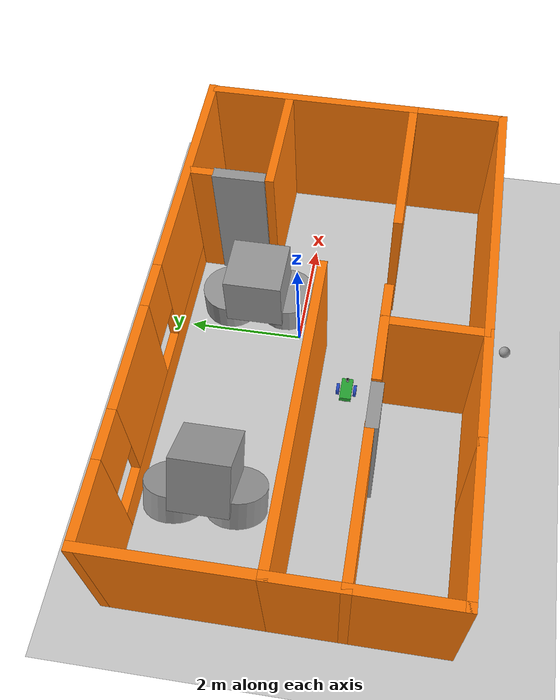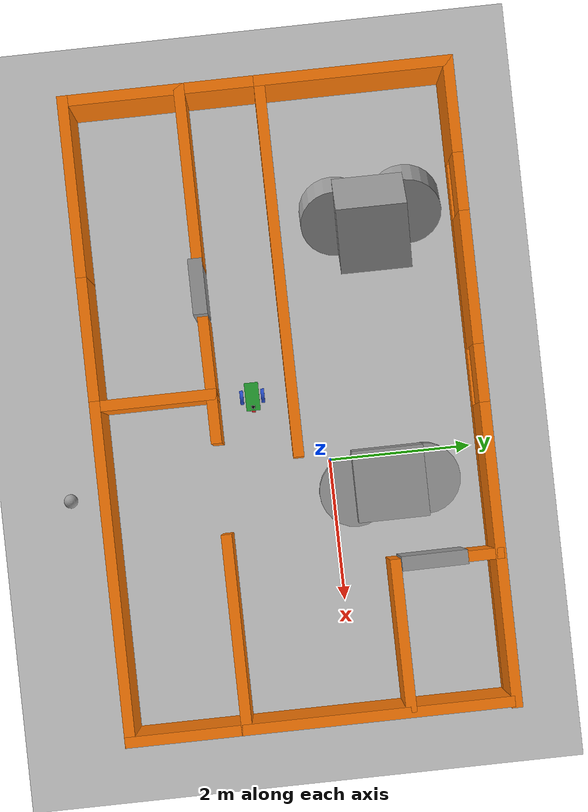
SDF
<sdf version="1.6">
 <world name="default">
  <plugin name="world" filename="libworld.so"/>
  <light name="sun" type="directional">
   <pose>0 0 10 0 -0 0</pose>
   <diffuse>0.8 0.8 0.8 1</diffuse>
   <specular>0.2 0.2 0.2 1</specular>
   <attenuation>
    <range>1000</range>
    <constant>0.9</constant>
    <linear>0.01</linear>
    <quadratic>0.001</quadratic>
   </attenuation>
   <direction>-0.5 0.1 -0.9</direction>
  </light>
  <model name="ground_plane">
   <static>1</static>
   <link name="link">
    <collision name="collision">
     <geometry><plane><normal>0 0 1</normal><size>100 100</size></plane></geometry>
     <surface>
      <contact><collide_bitmask>65535</collide_bitmask></contact>
      <friction><ode><mu>100</mu><mu2>50</mu2></ode></friction>
     </surface>
    </collision>
    <visual name="visual">
     <cast_shadows>0</cast_shadows>
     <geometry><plane><normal>0 0 1</normal><size>100 100</size></plane></geometry>
     <material>
      <script><uri>file://media/materials/scripts/gazebo.material</uri><name>Gazebo/Grey</name></script>
     </material>
    </visual>
   </link>
  </model>
  <gravity>0 0 -9.8</gravity>
  <magnetic_field>6e-06 2.3e-05 -4.2e-05</magnetic_field>
  <atmosphere type="adiabatic"/>
  <physics name="default_physics" default="0" type="ode">
   <max_step_size>0.001</max_step_size>
   <real_time_factor>1</real_time_factor>
   <real_time_update_rate>1000</real_time_update_rate>
  </physics>
  <scene><ambient>0.4 0.4 0.4 1</ambient><background>0.7 0.7 0.7 1</background><shadows>1</shadows></scene>
  <spherical_coordinates>
   <surface_model>EARTH_WGS84</surface_model>
   <latitude_deg>0</latitude_deg>
   <longitude_deg>0</longitude_deg>
   <elevation>0</elevation>
   <heading_deg>0</heading_deg>
  </spherical_coordinates>
  <model name="MyWorld">
   <pose>-0.8409 -0.49336 0 0 -0 0</pose>
   <link name="Door_1">
    <collision name="Door_1_Collision">
     <geometry><box><size>0.767 0.2 2.5</size></box></geometry>
     <pose>0 0 1.25 0 -0 0</pose>
    </collision>
    <visual name="Door_1_Visual">
     <pose>0 0 1.25 0 -0 0</pose>
     <geometry><box><size>0.767 0.2 2.5</size></box></geometry>
     <material>
      <script><uri>file://media/materials/scripts/gazebo.material</uri><name>Gazebo/Grey</name></script>
     </material>
    </visual>
    <pose>-1.69584 -1.0816 0 0 -0 0</pose>
   </link>
   <link name="Door_6">
    <collision name="Door_6_Collision">
     <geometry><box><size>0.911435 0.2 2.5</size></box></geometry>
     <pose>0 0 1.25 0 -0 0</pose>
    </collision>
    <visual name="Door_6_Visual">
     <pose>0 0 1.25 0 -0 0</pose>
     <geometry><box><size>0.911435 0.2 2.5</size></box></geometry>
     <material>
      <script><uri>file://media/materials/scripts/gazebo.material</uri><name>Gazebo/Grey</name></script>
     </material>
    </visual>
    <pose>2.36766 1.74731 0 0 0 -1.56603</pose>
   </link>
   <link name="Wall_0">
    <collision name="Wall_0_Collision">
     <geometry><box><size>2.5 0.15 2.5</size></box></geometry>
     <pose>0 0 1.25 0 -0 0</pose>
    </collision>
    <visual name="Wall_0_Visual">
     <pose>0 0 1.25 0 -0 0</pose>
     <geometry><box><size>2.5 0.15 2.5</size></box></geometry>
     <material>
      <script><uri>file://media/materials/scripts/gazebo.material</uri><name>Gazebo/Grey</name></script>
      <ambient>0.996078 0.47451 0.0196078 1</ambient>
     </material>
     <meta><layer>0</layer></meta>
    </visual>
    <pose>-3.2325 -1.05 0 0 -0 3.14159</pose>
   </link>
   <link name="Wall_1">
    <collision name="Wall_1_Collision">
     <geometry><box><size>1.75 0.15 2.5</size></box></geometry>
     <pose>0 0 1.25 0 -0 0</pose>
    </collision>
    <visual name="Wall_1_Visual">
     <pose>0 0 1.25 0 -0 0</pose>
     <geometry><box><size>1.75 0.15 2.5</size></box></geometry>
     <material>
      <script><uri>file://media/materials/scripts/gazebo.material</uri><name>Gazebo/Grey</name></script>
      <ambient>0.996078 0.47451 0.0196078 1</ambient>
     </material>
     <meta><layer>0</layer></meta>
    </visual>
    <pose>-4.4075 -1.85 0 0 0 -1.5708</pose>
   </link>
   <link name="Wall_11">
    <collision name="Wall_11_Collision">
     <geometry><box><size>1.25 0.15 2.5</size></box></geometry>
     <pose>0 0 1.25 0 -0 0</pose>
    </collision>
    <visual name="Wall_11_Visual">
     <pose>0 0 1.25 0 -0 0</pose>
     <geometry><box><size>1.25 0.15 2.5</size></box></geometry>
     <material>
      <script><uri>file://media/materials/scripts/gazebo.material</uri><name>Gazebo/Grey</name></script>
      <ambient>0.996078 0.47451 0.0196078 1</ambient>
     </material>
     <meta><layer>0</layer></meta>
    </visual>
    <pose>-4.4075 -0.5 0 0 -0 1.5708</pose>
   </link>
   <link name="Wall_12">
    <collision name="Wall_12_Collision">
     <geometry><box><size>5.25 0.15 2.5</size></box></geometry>
     <pose>0 0 1.25 0 -0 0</pose>
    </collision>
    <visual name="Wall_12_Visual">
     <pose>0 0 1.25 0 -0 0</pose>
     <geometry><box><size>5.25 0.15 2.5</size></box></geometry>
     <material>
      <script><uri>file://media/materials/scripts/gazebo.material</uri><name>Gazebo/Grey</name></script>
      <ambient>0.996078 0.47451 0.0196078 1</ambient>
     </material>
     <meta><layer>0</layer></meta>
    </visual>
    <pose>-1.8575 0.05 0 0 -0 0</pose>
   </link>
   <link name="Wall_15">
    <collision name="Wall_15_Collision">
     <geometry><box><size>2.75 0.15 2.5</size></box></geometry>
     <pose>0 0 1.25 0 -0 0</pose>
    </collision>
    <visual name="Wall_15_Visual">
     <pose>0 0 1.25 0 -0 0</pose>
     <geometry><box><size>2.75 0.15 2.5</size></box></geometry>
     <material>
      <script><uri>file://media/materials/scripts/gazebo.material</uri><name>Gazebo/Grey</name></script>
      <ambient>0.996078 0.47451 0.0196078 1</ambient>
     </material>
     <meta><layer>0</layer></meta>
    </visual>
    <pose>-4.4075 1.35 0 0 -0 1.5708</pose>
   </link>
   <link name="Wall_16">
    <pose>0 2.65 0 0 -0 0</pose>
    <visual name="Wall_16_Visual_0">
     <pose>-3.81322 0 1.25 0 -0 0</pose>
     <geometry><box><size>1.33857 0.15 2.5</size></box></geometry>
     <material>
      <script><uri>file://media/materials/scripts/gazebo.material</uri><name>Gazebo/Grey</name></script>
      <ambient>0.996078 0.47451 0.0196078 1</ambient>
     </material>
     <meta><layer>0</layer></meta>
    </visual>
    <collision name="Wall_16_Collision_0">
     <geometry><box><size>1.33857 0.15 2.5</size></box></geometry>
     <pose>-3.81322 0 1.25 0 -0 0</pose>
    </collision>
    <visual name="Wall_16_Visual_1">
     <pose>0.669285 0 0.25 0 -0 0</pose>
     <geometry><box><size>7.62643 0.15 0.5</size></box></geometry>
     <material>
      <script><uri>file://media/materials/scripts/gazebo.material</uri><name>Gazebo/Grey</name></script>
      <ambient>0.996078 0.47451 0.0196078 1</ambient>
     </material>
     <meta><layer>0</layer></meta>
    </visual>
    <collision name="Wall_16_Collision_1">
     <geometry><box><size>7.62643 0.15 0.5</size></box></geometry>
     <pose>0.669285 0 0.25 0 -0 0</pose>
    </collision>
    <visual name="Wall_16_Visual_2">
     <pose>-1.42722 0 1.5 0 -0 0</pose>
     <geometry><box><size>1.83342 0.15 2</size></box></geometry>
     <material>
      <script><uri>file://media/materials/scripts/gazebo.material</uri><name>Gazebo/Grey</name></script>
      <ambient>0.996078 0.47451 0.0196078 1</ambient>
     </material>
     <meta><layer>0</layer></meta>
    </visual>
    <collision name="Wall_16_Collision_2">
     <geometry><box><size>1.83342 0.15 2</size></box></geometry>
     <pose>-1.42722 0 1.5 0 -0 0</pose>
    </collision>
    <visual name="Wall_16_Visual_3">
     <pose>2.38599 0 1.5 0 -0 0</pose>
     <geometry><box><size>4.19301 0.15 2</size></box></geometry>
     <material>
      <script><uri>file://media/materials/scripts/gazebo.material</uri><name>Gazebo/Grey</name></script>
      <ambient>0.996078 0.47451 0.0196078 1</ambient>
     </material>
     <meta><layer>0</layer></meta>
    </visual>
    <collision name="Wall_16_Collision_3">
     <geometry><box><size>4.19301 0.15 2</size></box></geometry>
     <pose>2.38599 0 1.5 0 -0 0</pose>
    </collision>
    <visual name="Wall_16_Visual_4">
     <pose>-2.74393 0 1.9 0 -0 0</pose>
     <geometry><box><size>0.8 0.15 1.2</size></box></geometry>
     <material>
      <script><uri>file://media/materials/scripts/gazebo.material</uri><name>Gazebo/Grey</name></script>
      <ambient>0.996078 0.47451 0.0196078 1</ambient>
     </material>
     <meta><layer>0</layer></meta>
    </visual>
    <collision name="Wall_16_Collision_4">
     <geometry><box><size>0.8 0.15 1.2</size></box></geometry>
     <pose>-2.74393 0 1.9 0 -0 0</pose>
    </collision>
    <visual name="Wall_16_Visual_5">
     <pose>-0.110511 0 1.9 0 -0 0</pose>
     <geometry><box><size>0.8 0.15 1.2</size></box></geometry>
     <material>
      <script><uri>file://media/materials/scripts/gazebo.material</uri><name>Gazebo/Grey</name></script>
      <ambient>0.996078 0.47451 0.0196078 1</ambient>
     </material>
     <meta><layer>0</layer></meta>
    </visual>
    <collision name="Wall_16_Collision_5">
     <geometry><box><size>0.8 0.15 1.2</size></box></geometry>
     <pose>-0.110511 0 1.9 0 -0 0</pose>
    </collision>
   </link>
   <link name="Wall_18">
    <collision name="Wall_18_Collision">
     <geometry><box><size>3.75 0.15 2.5</size></box></geometry>
     <pose>0 0 1.25 0 -0 0</pose>
    </collision>
    <visual name="Wall_18_Visual">
     <pose>0 0 1.25 0 -0 0</pose>
     <geometry><box><size>3.75 0.15 2.5</size></box></geometry>
     <material>
      <script><uri>file://media/materials/scripts/gazebo.material</uri><name>Gazebo/Grey</name></script>
      <ambient>0.996078 0.47451 0.0196078 1</ambient>
     </material>
     <meta><layer>0</layer></meta>
    </visual>
    <pose>4.3925 0.75 0 0 -0 1.5708</pose>
   </link>
   <link name="Wall_2">
    <collision name="Wall_2_Collision">
     <geometry><box><size>2.5 0.15 2.5</size></box></geometry>
     <pose>0 0 1.25 0 -0 0</pose>
    </collision>
    <visual name="Wall_2_Visual">
     <pose>0 0 1.25 0 -0 0</pose>
     <geometry><box><size>2.5 0.15 2.5</size></box></geometry>
     <material>
      <script><uri>file://media/materials/scripts/gazebo.material</uri><name>Gazebo/Grey</name></script>
      <ambient>0.996078 0.47451 0.0196078 1</ambient>
     </material>
     <meta><layer>0</layer></meta>
    </visual>
    <pose>-3.2325 -2.65 0 0 -0 0</pose>
   </link>
   <link name="Wall_20">
    <collision name="Wall_20_Collision">
     <geometry><box><size>2.099 0.15 2.5</size></box></geometry>
     <pose>0 0 1.25 0 -0 0</pose>
    </collision>
    <visual name="Wall_20_Visual">
     <pose>0 0 1.25 0 -0 0</pose>
     <geometry><box><size>2.099 0.15 2.5</size></box></geometry>
     <material>
      <script><uri>file://media/materials/scripts/gazebo.material</uri><name>Gazebo/Grey</name></script>
      <ambient>0.996078 0.47451 0.0196078 1</ambient>
     </material>
     <meta><layer>0</layer></meta>
    </visual>
    <pose>3.34559 1.20872 0 0 -0 0</pose>
   </link>
   <link name="Wall_23">
    <collision name="Wall_23_Collision">
     <geometry><box><size>0.5 0.15 2.5</size></box></geometry>
     <pose>0 0 1.25 0 -0 0</pose>
    </collision>
    <visual name="Wall_23_Visual">
     <pose>0 0 1.25 0 -0 0</pose>
     <geometry><box><size>0.5 0.15 2.5</size></box></geometry>
     <material>
      <script><uri>file://media/materials/scripts/gazebo.material</uri><name>Gazebo/Grey</name></script>
      <ambient>0.996078 0.47451 0.0196078 1</ambient>
     </material>
     <meta><layer>0</layer></meta>
    </visual>
    <pose>2.36331 2.44482 0 0 -0 1.5708</pose>
   </link>
   <link name="Wall_25">
    <collision name="Wall_25_Collision">
     <geometry><box><size>1.14363 0.15 2.5</size></box></geometry>
     <pose>0 0 1.25 0 -0 0</pose>
    </collision>
    <visual name="Wall_25_Visual">
     <pose>0 0 1.25 0 -0 0</pose>
     <geometry><box><size>1.14363 0.15 2.5</size></box></geometry>
     <material>
      <script><uri>file://media/materials/scripts/gazebo.material</uri><name>Gazebo/Grey</name></script>
      <ambient>0.996078 0.47451 0.0196078 1</ambient>
     </material>
     <meta><layer>0</layer></meta>
    </visual>
    <pose>-0.704309 -1.0526 0 0 -0 0.005237</pose>
   </link>
   <link name="Wall_3">
    <collision name="Wall_3_Collision">
     <geometry><box><size>2 0.15 2.5</size></box></geometry>
     <pose>0 0 1.25 0 -0 0</pose>
    </collision>
    <visual name="Wall_3_Visual">
     <pose>0 0 1.25 0 -0 0</pose>
     <geometry><box><size>2 0.15 2.5</size></box></geometry>
     <material>
      <script><uri>file://media/materials/scripts/gazebo.material</uri><name>Gazebo/Grey</name></script>
      <ambient>0.996078 0.47451 0.0196078 1</ambient>
     </material>
     <meta><layer>0</layer></meta>
    </visual>
    <pose>-1.1325 -2.65 0 0 -0 0</pose>
   </link>
   <link name="Wall_4">
    <collision name="Wall_4_Collision">
     <geometry><box><size>1.75 0.15 2.5</size></box></geometry>
     <pose>0 0 1.25 0 -0 0</pose>
    </collision>
    <visual name="Wall_4_Visual">
     <pose>0 0 1.25 0 -0 0</pose>
     <geometry><box><size>1.75 0.15 2.5</size></box></geometry>
     <material>
      <script><uri>file://media/materials/scripts/gazebo.material</uri><name>Gazebo/Grey</name></script>
      <ambient>0.996078 0.47451 0.0196078 1</ambient>
     </material>
     <meta><layer>0</layer></meta>
    </visual>
    <pose>-0.2075 -1.85 0 0 -0 1.5708</pose>
   </link>
   <link name="Wall_5">
    <collision name="Wall_5_Collision">
     <geometry><box><size>0.75 0.15 2.5</size></box></geometry>
     <pose>0 0 1.25 0 -0 0</pose>
    </collision>
    <visual name="Wall_5_Visual">
     <pose>0 0 1.25 0 -0 0</pose>
     <geometry><box><size>0.75 0.15 2.5</size></box></geometry>
     <material>
      <script><uri>file://media/materials/scripts/gazebo.material</uri><name>Gazebo/Grey</name></script>
      <ambient>0.996078 0.47451 0.0196078 1</ambient>
     </material>
     <meta><layer>0</layer></meta>
    </visual>
    <pose>0.0925 -1.05 0 0 -0 0</pose>
   </link>
   <link name="Wall_7">
    <collision name="Wall_7_Collision">
     <geometry><box><size>4.75 0.15 2.5</size></box></geometry>
     <pose>0 0 1.25 0 -0 0</pose>
    </collision>
    <visual name="Wall_7_Visual">
     <pose>0 0 1.25 0 -0 0</pose>
     <geometry><box><size>4.75 0.15 2.5</size></box></geometry>
     <material>
      <script><uri>file://media/materials/scripts/gazebo.material</uri><name>Gazebo/Grey</name></script>
      <ambient>0.996078 0.47451 0.0196078 1</ambient>
     </material>
     <meta><layer>0</layer></meta>
    </visual>
    <pose>2.0925 -2.65 0 0 -0 0</pose>
   </link>
   <link name="Wall_8">
    <collision name="Wall_8_Collision">
     <geometry><box><size>1.75 0.15 2.5</size></box></geometry>
     <pose>0 0 1.25 0 -0 0</pose>
    </collision>
    <visual name="Wall_8_Visual">
     <pose>0 0 1.25 0 -0 0</pose>
     <geometry><box><size>1.75 0.15 2.5</size></box></geometry>
     <material>
      <script><uri>file://media/materials/scripts/gazebo.material</uri><name>Gazebo/Grey</name></script>
      <ambient>0.996078 0.47451 0.0196078 1</ambient>
     </material>
     <meta><layer>0</layer></meta>
    </visual>
    <pose>4.3925 -1.85 0 0 -0 1.5708</pose>
   </link>
   <link name="Wall_9">
    <collision name="Wall_9_Collision">
     <geometry><box><size>2.75 0.15 2.5</size></box></geometry>
     <pose>0 0 1.25 0 -0 0</pose>
    </collision>
    <visual name="Wall_9_Visual">
     <pose>0 0 1.25 0 -0 0</pose>
     <geometry><box><size>2.75 0.15 2.5</size></box></geometry>
     <material>
      <script><uri>file://media/materials/scripts/gazebo.material</uri><name>Gazebo/Grey</name></script>
      <ambient>0.996078 0.47451 0.0196078 1</ambient>
     </material>
     <meta><layer>0</layer></meta>
    </visual>
    <pose>3.0925 -1.05 0 0 -0 3.14159</pose>
   </link>
   <static>1</static>
  </model>
  <model name="MyModel">
   <link name="link_3">
    <pose>-0 -0.003515 0.333333 0 -0 0</pose>
    <inertial>
     <mass>1</mass>
     <inertia>
      <ixx>0.166667</ixx>
      <ixy>0</ixy>
      <ixz>0</ixz>
      <iyy>0.166667</iyy>
      <iyz>0</iyz>
      <izz>0.166667</izz>
     </inertia>
    </inertial>
    <visual name="visual">
     <geometry><box><size>1 1 1</size></box></geometry>
     <material>
      <lighting>1</lighting>
      <script><uri>file://media/materials/scripts/gazebo.material</uri><name>Gazebo/Grey</name></script>
      <shader type="pixel"><normal_map>__default__</normal_map></shader>
      <ambient>0.3 0.3 0.3 1</ambient>
      <diffuse>0.7 0.7 0.7 1</diffuse>
      <specular>0.01 0.01 0.01 1</specular>
      <emissive>0 0 0 1</emissive>
     </material>
    </visual>
    <collision name="collision">
     <geometry><box><size>2.01 0.5 1</size></box></geometry>
     <surface>
      <friction>
       <ode><mu>1</mu><mu2>1</mu2><fdir1>0 0 0</fdir1><slip1>0</slip1><slip2>0</slip2></ode>
       <torsional>
        <coefficient>1</coefficient>
        <patch_radius>0</patch_radius>
        <surface_radius>0</surface_radius>
        <use_patch_radius>1</use_patch_radius>
        <ode><slip>0</slip></ode>
       </torsional>
      </friction>
      <bounce><restitution_coefficient>0</restitution_coefficient><threshold>1e+06</threshold></bounce>
      <contact>
       <collide_without_contact>0</collide_without_contact>
       <collide_without_contact_bitmask>1</collide_without_contact_bitmask>
       <collide_bitmask>1</collide_bitmask>
       <ode>
        <soft_cfm>0</soft_cfm>
        <soft_erp>0.2</soft_erp>
        <kp>1e+13</kp>
        <kd>1</kd>
        <max_vel>0.01</max_vel>
        <min_depth>0</min_depth>
       </ode>
       <bullet>
        <split_impulse>1</split_impulse>
        <split_impulse_penetration_threshold>-0.01</split_impulse_penetration_threshold>
        <soft_cfm>0</soft_cfm>
        <soft_erp>0.2</soft_erp>
        <kp>1e+13</kp>
        <kd>1</kd>
       </bullet>
      </contact>
     </surface>
    </collision>
   </link>
   <link name="link_6">
    <pose>-0 -0.498242 -0.166667 0 -0 0</pose>
    <inertial>
     <mass>1</mass>
     <inertia><ixx>0.145833</ixx><ixy>0</ixy><ixz>0</ixz><iyy>0.145833</iyy><iyz>0</iyz><izz>0.125</izz></inertia>
    </inertial>
    <visual name="visual">
     <pose>0.08 0 0 0 -0 0</pose>
     <geometry><cylinder><radius>0.5</radius><length>0.5</length></cylinder></geometry>
     <material>
      <lighting>1</lighting>
      <script><uri>file://media/materials/scripts/gazebo.material</uri><name>Gazebo/Grey</name></script>
      <shader type="pixel"><normal_map>__default__</normal_map></shader>
      <ambient>0.3 0.3 0.3 1</ambient>
      <diffuse>0.7 0.7 0.7 1</diffuse>
      <specular>0.01 0.01 0.01 1</specular>
      <emissive>0 0 0 1</emissive>
     </material>
    </visual>
    <collision name="collision">
     <pose>0 0 0 1.5708 -0 0</pose>
     <geometry><cylinder><radius>0.5</radius><length>0.5</length></cylinder></geometry>
     <surface>
      <friction>
       <ode><mu>1</mu><mu2>1</mu2><fdir1>0 0 0</fdir1><slip1>0</slip1><slip2>0</slip2></ode>
       <torsional>
        <coefficient>1</coefficient>
        <patch_radius>0</patch_radius>
        <surface_radius>0</surface_radius>
        <use_patch_radius>1</use_patch_radius>
        <ode><slip>0</slip></ode>
       </torsional>
      </friction>
      <bounce><restitution_coefficient>0</restitution_coefficient><threshold>1e+06</threshold></bounce>
      <contact>
       <collide_without_contact>0</collide_without_contact>
       <collide_without_contact_bitmask>1</collide_without_contact_bitmask>
       <collide_bitmask>1</collide_bitmask>
       <ode>
        <soft_cfm>0</soft_cfm>
        <soft_erp>0.2</soft_erp>
        <kp>1e+13</kp>
        <kd>1</kd>
        <max_vel>0.01</max_vel>
        <min_depth>0</min_depth>
       </ode>
       <bullet>
        <split_impulse>1</split_impulse>
        <split_impulse_penetration_threshold>-0.01</split_impulse_penetration_threshold>
        <soft_cfm>0</soft_cfm>
        <soft_erp>0.2</soft_erp>
        <kp>1e+13</kp>
        <kd>1</kd>
       </bullet>
      </contact>
     </surface>
    </collision>
   </link>
   <link name="link_6_clone">
    <pose>-0 0.501758 -0.166667 0 -0 0</pose>
    <inertial>
     <mass>1</mass>
     <inertia><ixx>0.145833</ixx><ixy>0</ixy><ixz>0</ixz><iyy>0.145833</iyy><iyz>0</iyz><izz>0.125</izz></inertia>
    </inertial>
    <visual name="visual">
     <geometry><cylinder><radius>0.5</radius><length>0.5</length></cylinder></geometry>
     <material>
      <lighting>1</lighting>
      <script><uri>file://media/materials/scripts/gazebo.material</uri><name>Gazebo/Grey</name></script>
      <shader type="pixel"><normal_map>__default__</normal_map></shader>
      <ambient>0.3 0.3 0.3 1</ambient>
      <diffuse>0.7 0.7 0.7 1</diffuse>
      <specular>0.01 0.01 0.01 1</specular>
      <emissive>0 0 0 1</emissive>
     </material>
    </visual>
    <collision name="collision">
     <pose>0 0 0 1.5708 -0 0</pose>
     <geometry><cylinder><radius>0.5</radius><length>0.5</length></cylinder></geometry>
     <surface>
      <friction>
       <ode><mu>1</mu><mu2>1</mu2><fdir1>0 0 0</fdir1><slip1>0</slip1><slip2>0</slip2></ode>
       <torsional>
        <coefficient>1</coefficient>
        <patch_radius>0</patch_radius>
        <surface_radius>0</surface_radius>
        <use_patch_radius>1</use_patch_radius>
        <ode><slip>0</slip></ode>
       </torsional>
      </friction>
      <bounce><restitution_coefficient>0</restitution_coefficient><threshold>1e+06</threshold></bounce>
      <contact>
       <collide_without_contact>0</collide_without_contact>
       <collide_without_contact_bitmask>1</collide_without_contact_bitmask>
       <collide_bitmask>1</collide_bitmask>
       <ode>
        <soft_cfm>0</soft_cfm>
        <soft_erp>0.2</soft_erp>
        <kp>1e+13</kp>
        <kd>1</kd>
        <max_vel>0.01</max_vel>
        <min_depth>0</min_depth>
       </ode>
       <bullet>
        <split_impulse>1</split_impulse>
        <split_impulse_penetration_threshold>-0.01</split_impulse_penetration_threshold>
        <soft_cfm>0</soft_cfm>
        <soft_erp>0.2</soft_erp>
        <kp>1e+13</kp>
        <kd>1</kd>
       </bullet>
      </contact>
     </surface>
    </collision>
   </link>
   <joint name="link_3_JOINT_0" type="revolute">
    <parent>link_3</parent>
    <child>link_6_clone</child>
    <axis>
     <xyz>1 0 0</xyz>
     <use_parent_model_frame>0</use_parent_model_frame>
     <limit>
      <lower>-1.79769e+308</lower>
      <upper>1.79769e+308</upper>
      <effort>-1</effort>
      <velocity>-1</velocity>
     </limit>
     <dynamics>
      <spring_reference>0</spring_reference>
      <spring_stiffness>0</spring_stiffness>
      <damping>0</damping>
     </dynamics>
    </axis>
    <physics>
     <ode><limit><cfm>0</cfm><erp>0.2</erp></limit><suspension><cfm>0</cfm><erp>0.2</erp></suspension></ode>
    </physics>
   </joint>
   <joint name="link_3_JOINT_1" type="revolute">
    <parent>link_3</parent>
    <child>link_6</child>
    <axis>
     <xyz>1 0 0</xyz>
     <use_parent_model_frame>0</use_parent_model_frame>
     <limit>
      <lower>-1.79769e+308</lower>
      <upper>1.79769e+308</upper>
      <effort>-1</effort>
      <velocity>-1</velocity>
     </limit>
     <dynamics>
      <spring_reference>0</spring_reference>
      <spring_stiffness>0</spring_stiffness>
      <damping>0</damping>
     </dynamics>
    </axis>
    <physics>
     <ode><limit><cfm>0</cfm><erp>0.2</erp></limit><suspension><cfm>0</cfm><erp>0.2</erp></suspension></ode>
    </physics>
   </joint>
   <static>0</static>
   <pose>0.395351 0.794896 0.666573 -0 0.033495 -0.000321</pose>
  </model>
  <model name="MyModel_clone">
   <link name="link_3">
    <pose>-0 -0.003515 0.333333 0 -0 0</pose>
    <inertial>
     <mass>1</mass>
     <inertia>
      <ixx>0.166667</ixx>
      <ixy>0</ixy>
      <ixz>0</ixz>
      <iyy>0.166667</iyy>
      <iyz>0</iyz>
      <izz>0.166667</izz>
     </inertia>
    </inertial>
    <visual name="visual">
     <geometry><box><size>1 1 1</size></box></geometry>
     <material>
      <lighting>1</lighting>
      <script><uri>file://media/materials/scripts/gazebo.material</uri><name>Gazebo/Grey</name></script>
      <shader type="pixel"><normal_map>__default__</normal_map></shader>
      <ambient>0.3 0.3 0.3 1</ambient>
      <diffuse>0.7 0.7 0.7 1</diffuse>
      <specular>0.01 0.01 0.01 1</specular>
      <emissive>0 0 0 1</emissive>
     </material>
    </visual>
    <collision name="collision">
     <geometry><box><size>2.01 0.5 1</size></box></geometry>
     <surface>
      <friction>
       <ode><mu>1</mu><mu2>1</mu2><fdir1>0 0 0</fdir1><slip1>0</slip1><slip2>0</slip2></ode>
       <torsional>
        <coefficient>1</coefficient>
        <patch_radius>0</patch_radius>
        <surface_radius>0</surface_radius>
        <use_patch_radius>1</use_patch_radius>
        <ode><slip>0</slip></ode>
       </torsional>
      </friction>
      <bounce><restitution_coefficient>0</restitution_coefficient><threshold>1e+06</threshold></bounce>
      <contact>
       <collide_without_contact>0</collide_without_contact>
       <collide_without_contact_bitmask>1</collide_without_contact_bitmask>
       <collide_bitmask>1</collide_bitmask>
       <ode>
        <soft_cfm>0</soft_cfm>
        <soft_erp>0.2</soft_erp>
        <kp>1e+13</kp>
        <kd>1</kd>
        <max_vel>0.01</max_vel>
        <min_depth>0</min_depth>
       </ode>
       <bullet>
        <split_impulse>1</split_impulse>
        <split_impulse_penetration_threshold>-0.01</split_impulse_penetration_threshold>
        <soft_cfm>0</soft_cfm>
        <soft_erp>0.2</soft_erp>
        <kp>1e+13</kp>
        <kd>1</kd>
       </bullet>
      </contact>
     </surface>
    </collision>
   </link>
   <link name="link_6">
    <pose>-0 -0.498242 -0.166667 0 -0 0</pose>
    <inertial>
     <mass>1</mass>
     <inertia><ixx>0.145833</ixx><ixy>0</ixy><ixz>0</ixz><iyy>0.145833</iyy><iyz>0</iyz><izz>0.125</izz></inertia>
    </inertial>
    <visual name="visual">
     <pose>0.08 0 0 0 -0 0</pose>
     <geometry><cylinder><radius>0.5</radius><length>0.5</length></cylinder></geometry>
     <material>
      <lighting>1</lighting>
      <script><uri>file://media/materials/scripts/gazebo.material</uri><name>Gazebo/Grey</name></script>
      <shader type="pixel"><normal_map>__default__</normal_map></shader>
      <ambient>0.3 0.3 0.3 1</ambient>
      <diffuse>0.7 0.7 0.7 1</diffuse>
      <specular>0.01 0.01 0.01 1</specular>
      <emissive>0 0 0 1</emissive>
     </material>
    </visual>
    <collision name="collision">
     <pose>0 0 0 1.5708 -0 0</pose>
     <geometry><cylinder><radius>0.5</radius><length>0.5</length></cylinder></geometry>
     <surface>
      <friction>
       <ode><mu>1</mu><mu2>1</mu2><fdir1>0 0 0</fdir1><slip1>0</slip1><slip2>0</slip2></ode>
       <torsional>
        <coefficient>1</coefficient>
        <patch_radius>0</patch_radius>
        <surface_radius>0</surface_radius>
        <use_patch_radius>1</use_patch_radius>
        <ode><slip>0</slip></ode>
       </torsional>
      </friction>
      <bounce><restitution_coefficient>0</restitution_coefficient><threshold>1e+06</threshold></bounce>
      <contact>
       <collide_without_contact>0</collide_without_contact>
       <collide_without_contact_bitmask>1</collide_without_contact_bitmask>
       <collide_bitmask>1</collide_bitmask>
       <ode>
        <soft_cfm>0</soft_cfm>
        <soft_erp>0.2</soft_erp>
        <kp>1e+13</kp>
        <kd>1</kd>
        <max_vel>0.01</max_vel>
        <min_depth>0</min_depth>
       </ode>
       <bullet>
        <split_impulse>1</split_impulse>
        <split_impulse_penetration_threshold>-0.01</split_impulse_penetration_threshold>
        <soft_cfm>0</soft_cfm>
        <soft_erp>0.2</soft_erp>
        <kp>1e+13</kp>
        <kd>1</kd>
       </bullet>
      </contact>
     </surface>
    </collision>
   </link>
   <link name="link_6_clone">
    <pose>-0 0.501758 -0.166667 0 -0 0</pose>
    <inertial>
     <mass>1</mass>
     <inertia><ixx>0.145833</ixx><ixy>0</ixy><ixz>0</ixz><iyy>0.145833</iyy><iyz>0</iyz><izz>0.125</izz></inertia>
    </inertial>
    <visual name="visual">
     <geometry><cylinder><radius>0.5</radius><length>0.5</length></cylinder></geometry>
     <material>
      <lighting>1</lighting>
      <script><uri>file://media/materials/scripts/gazebo.material</uri><name>Gazebo/Grey</name></script>
      <shader type="pixel"><normal_map>__default__</normal_map></shader>
      <ambient>0.3 0.3 0.3 1</ambient>
      <diffuse>0.7 0.7 0.7 1</diffuse>
      <specular>0.01 0.01 0.01 1</specular>
      <emissive>0 0 0 1</emissive>
     </material>
    </visual>
    <collision name="collision">
     <pose>0 0 0 1.5708 -0 0</pose>
     <geometry><cylinder><radius>0.5</radius><length>0.5</length></cylinder></geometry>
     <surface>
      <friction>
       <ode><mu>1</mu><mu2>1</mu2><fdir1>0 0 0</fdir1><slip1>0</slip1><slip2>0</slip2></ode>
       <torsional>
        <coefficient>1</coefficient>
        <patch_radius>0</patch_radius>
        <surface_radius>0</surface_radius>
        <use_patch_radius>1</use_patch_radius>
        <ode><slip>0</slip></ode>
       </torsional>
      </friction>
      <bounce><restitution_coefficient>0</restitution_coefficient><threshold>1e+06</threshold></bounce>
      <contact>
       <collide_without_contact>0</collide_without_contact>
       <collide_without_contact_bitmask>1</collide_without_contact_bitmask>
       <collide_bitmask>1</collide_bitmask>
       <ode>
        <soft_cfm>0</soft_cfm>
        <soft_erp>0.2</soft_erp>
        <kp>1e+13</kp>
        <kd>1</kd>
        <max_vel>0.01</max_vel>
        <min_depth>0</min_depth>
       </ode>
       <bullet>
        <split_impulse>1</split_impulse>
        <split_impulse_penetration_threshold>-0.01</split_impulse_penetration_threshold>
        <soft_cfm>0</soft_cfm>
        <soft_erp>0.2</soft_erp>
        <kp>1e+13</kp>
        <kd>1</kd>
       </bullet>
      </contact>
     </surface>
    </collision>
   </link>
   <joint name="link_3_JOINT_0" type="revolute">
    <parent>link_3</parent>
    <child>link_6_clone</child>
    <axis>
     <xyz>1 0 0</xyz>
     <use_parent_model_frame>0</use_parent_model_frame>
     <limit>
      <lower>-1.79769e+308</lower>
      <upper>1.79769e+308</upper>
      <effort>-1</effort>
      <velocity>-1</velocity>
     </limit>
     <dynamics>
      <spring_reference>0</spring_reference>
      <spring_stiffness>0</spring_stiffness>
      <damping>0</damping>
     </dynamics>
    </axis>
    <physics>
     <ode><limit><cfm>0</cfm><erp>0.2</erp></limit><suspension><cfm>0</cfm><erp>0.2</erp></suspension></ode>
    </physics>
   </joint>
   <joint name="link_3_JOINT_1" type="revolute">
    <parent>link_3</parent>
    <child>link_6</child>
    <axis>
     <xyz>1 0 0</xyz>
     <use_parent_model_frame>0</use_parent_model_frame>
     <limit>
      <lower>-1.79769e+308</lower>
      <upper>1.79769e+308</upper>
      <effort>-1</effort>
      <velocity>-1</velocity>
     </limit>
     <dynamics>
      <spring_reference>0</spring_reference>
      <spring_stiffness>0</spring_stiffness>
      <damping>0</damping>
     </dynamics>
    </axis>
    <physics>
     <ode><limit><cfm>0</cfm><erp>0.2</erp></limit><suspension><cfm>0</cfm><erp>0.2</erp></suspension></ode>
    </physics>
   </joint>
   <static>0</static>
   <pose>-3.41058 0.930185 0.644576 -0 0.520729 -0.003449</pose>
  </model>
  <model name="my_robot">
   <link name="robot_footprint">
    <inertial>
     <pose>0.001325 0 0 0 -0 0</pose>
     <mass>15.1</mass>
     <inertia>
      <ixx>0.100002</ixx>
      <ixy>0</ixy>
      <ixz>-1.48675e-07</ixz>
      <iyy>0.103976</iyy>
      <iyz>0</iyz>
      <izz>0.103976</izz>
     </inertia>
    </inertial>
    <collision name="robot_footprint_fixed_joint_lump__collision_collision">
     <geometry><box><size>0.4 0.2 0.1</size></box></geometry>
    </collision>
    <collision name="robot_footprint_fixed_joint_lump__back_caster_collision_collision_1">
     <pose>-0.15 0 -0.05 0 -0 0</pose>
     <geometry><sphere><radius>0.0499</radius></sphere></geometry>
    </collision>
    <collision name="robot_footprint_fixed_joint_lump__front_caster_collision_collision_2">
     <pose>0.15 0 -0.05 0 -0 0</pose>
     <geometry><sphere><radius>0.0499</radius></sphere></geometry>
    </collision>
    <collision name="robot_footprint_fixed_joint_lump__camera collision_collision_3">
     <pose>0.2 0 0 0 -0 0</pose>
     <geometry><box><size>0.05 0.05 0.05</size></box></geometry>
    </collision>
    <collision name="robot_footprint_fixed_joint_lump__hokuyo_collision_collision_4">
     <pose>0.15 0 0.1 0 -0 0</pose>
     <geometry><box><size>0.1 0.1 0.1</size></box></geometry>
    </collision>
    <visual name="robot_footprint_fixed_joint_lump__chassis_visual_visual">
     <geometry><box><size>0.4 0.2 0.1</size></box></geometry>
     <material>
      <script><name>Gazebo/Green</name><uri>file://media/materials/scripts/gazebo.material</uri></script>
     </material>
    </visual>
    <visual name="robot_footprint_fixed_joint_lump__back_caster_visual_visual_1">
     <pose>-0.15 0 -0.05 0 -0 0</pose>
     <geometry><sphere><radius>0.05</radius></sphere></geometry>
    </visual>
    <visual name="robot_footprint_fixed_joint_lump__front_caster_visual_visual_2">
     <pose>0.15 0 -0.05 0 -0 0</pose>
     <geometry><sphere><radius>0.05</radius></sphere></geometry>
    </visual>
    <visual name="robot_footprint_fixed_joint_lump__camera_visual_visual_3">
     <pose>0.2 0 0 0 -0 0</pose>
     <geometry><box><size>0.05 0.05 0.05</size></box></geometry>
     <material>
      <script><name>Gazebo/Red</name><uri>file://media/materials/scripts/gazebo.material</uri></script>
     </material>
    </visual>
    <visual name="robot_footprint_fixed_joint_lump__hokuyo_visual_visual_4">
     <pose>0.15 0 0.1 0 -0 0</pose>
     <geometry>
      <mesh><scale>1 1 1</scale><uri>/home/workspace/catkin_ws/src/my_robot/meshes/hokuyo.dae</uri></mesh>
     </geometry>
     <material><script><uri>__default__</uri><name>__default__</name></script></material>
    </visual>
    <sensor name="camera1" type="camera">
     <update_rate>30</update_rate>
     <camera name="head">
      <horizontal_fov>1.39626</horizontal_fov>
      <image><width>800</width><height>800</height><format>R8G8B8</format></image>
      <clip><near>0.02</near><far>300</far></clip>
     </camera>
     <plugin name="camera_controller" filename="libgazebo_ros_camera.so">
      <alwaysOn>true</alwaysOn>
      <updateRate>0.0</updateRate>
      <cameraName>camera</cameraName>
      <imageTopicName>rgb/image_raw</imageTopicName>
      <cameraInfoTopicName>rgb/camera_info</cameraInfoTopicName>
      <frameName>camera</frameName>
      <hackBaseline>0.07</hackBaseline>
      <distortionK1>0.0</distortionK1>
      <distortionK2>0.0</distortionK2>
      <distortionK3>0.0</distortionK3>
      <distortionT1>0.0</distortionT1>
      <distortionT2>0.0</distortionT2>
      <robotNamespace>/</robotNamespace>
     </plugin>
     <pose>0.2 0 0 0 -0 0</pose>
    </sensor>
    <sensor name="head_hokuyo_sensor" type="ray">
     <visualize>0</visualize>
     <update_rate>40</update_rate>
     <ray>
      <scan>
       <horizontal>
        <samples>720</samples>
        <resolution>1</resolution>
        <min_angle>-1.5708</min_angle>
        <max_angle>1.5708</max_angle>
       </horizontal>
       <vertical><samples>1</samples><min_angle>0</min_angle><max_angle>0</max_angle></vertical>
      </scan>
      <range><min>0.1</min><max>30</max><resolution>0.01</resolution></range>
      <noise><type>gaussian</type><mean>0</mean><stddev>0.01</stddev></noise>
     </ray>
     <plugin name="gazebo_ros_head_hokuyo_controller" filename="libgazebo_ros_laser.so">
      <topicName>/scan</topicName>
      <frameName>hokuyo</frameName>
      <robotNamespace>/</robotNamespace>
     </plugin>
     <pose>0.15 0 0.1 0 -0 0</pose>
    </sensor>
   </link>
   <link name="left_wheel">
    <pose>0 0.15 0 0 -0 0</pose>
    <inertial>
     <pose>0 0 0 -0 1.5707 1.5707</pose>
     <mass>5</mass>
     <inertia><ixx>0.1</ixx><ixy>0</ixy><ixz>0</ixz><iyy>0.1</iyy><iyz>0</iyz><izz>0.1</izz></inertia>
    </inertial>
    <collision name="left_wheel_collision_collision">
     <pose>0 0 0 3.14159 1.57079 -1.57089</pose>
     <geometry><cylinder><length>0.05</length><radius>0.1</radius></cylinder></geometry>
    </collision>
    <visual name="left_wheel_visual_visual">
     <pose>0 0 0 3.14159 1.57079 -1.57089</pose>
     <geometry><cylinder><length>0.05</length><radius>0.1</radius></cylinder></geometry>
     <material>
      <script><name>Gazebo/Blue</name><uri>file://media/materials/scripts/gazebo.material</uri></script>
     </material>
    </visual>
   </link>
   <joint name="left_wheel_hinge" type="revolute">
    <child>left_wheel</child>
    <parent>robot_footprint</parent>
    <axis>
     <xyz>0 1 0</xyz>
     <limit><lower>-1e+16</lower><upper>1e+16</upper></limit>
     <dynamics>
      <damping>1</damping>
      <friction>1</friction>
      <spring_reference>0</spring_reference>
      <spring_stiffness>0</spring_stiffness>
     </dynamics>
     <use_parent_model_frame>1</use_parent_model_frame>
    </axis>
   </joint>
   <link name="right_wheel">
    <pose>0 -0.15 0 0 -0 0</pose>
    <inertial>
     <pose>0 0 0 -0 1.5707 1.5707</pose>
     <mass>5</mass>
     <inertia><ixx>0.1</ixx><ixy>0</ixy><ixz>0</ixz><iyy>0.1</iyy><iyz>0</iyz><izz>0.1</izz></inertia>
    </inertial>
    <collision name="right_wheel_collision_collision">
     <pose>0 0 0 3.14159 1.57079 -1.57089</pose>
     <geometry><cylinder><length>0.05</length><radius>0.1</radius></cylinder></geometry>
    </collision>
    <visual name="right_wheel_visual_visual">
     <pose>0 0 0 3.14159 1.57079 -1.57089</pose>
     <geometry><cylinder><length>0.05</length><radius>0.1</radius></cylinder></geometry>
     <material>
      <script><name>Gazebo/Blue</name><uri>file://media/materials/scripts/gazebo.material</uri></script>
     </material>
    </visual>
   </link>
   <joint name="right_wheel_hinge" type="revolute">
    <child>right_wheel</child>
    <parent>robot_footprint</parent>
    <axis>
     <xyz>0 1 0</xyz>
     <limit><lower>-1e+16</lower><upper>1e+16</upper></limit>
     <dynamics>
      <damping>1</damping>
      <friction>1</friction>
      <spring_reference>0</spring_reference>
      <spring_stiffness>0</spring_stiffness>
     </dynamics>
     <use_parent_model_frame>1</use_parent_model_frame>
    </axis>
   </joint>
   <static>0</static>
   <plugin name="differential_drive_controller" filename="libgazebo_ros_diff_drive.so">
    <legacyMode>false</legacyMode>
    <alwaysOn>true</alwaysOn>
    <updateRate>10</updateRate>
    <leftJoint>left_wheel_hinge</leftJoint>
    <rightJoint>right_wheel_hinge</rightJoint>
    <wheelSeparation>0.4</wheelSeparation>
    <wheelDiameter>0.2</wheelDiameter>
    <torque>10</torque>
    <commandTopic>cmd_vel</commandTopic>
    <odometryTopic>odom</odometryTopic>
    <odometryFrame>odom</odometryFrame>
    <robotBaseFrame>robot_footprint</robotBaseFrame>
    <publishWheelTF>false</publishWheelTF>
    <publishWheelJointState>false</publishWheelJointState>
    <rosDebugLevel>na</rosDebugLevel>
    <wheelAcceleration>0</wheelAcceleration>
    <wheelTorque>5</wheelTorque>
    <odometrySource>world</odometrySource>
    <publishTf>1</publishTf>
    <publishOdomTF>true</publishOdomTF>
    <robotNamespace>/</robotNamespace>
   </plugin>
   <pose>-1.01394 -1.00524 0.099999 1e-05 0.000281 0.000766</pose>
  </model>
  <model name="my_ball">
   <link name="link">
    <inertial>
     <mass>0.25</mass>
     <inertia><ixx>0.1</ixx><ixy>0</ixy><ixz>0</ixz><iyy>0.1</iyy><iyz>0</iyz><izz>0.1</izz></inertia>
    </inertial>
    <visual name="visual">
     <geometry><sphere><radius>0.1</radius></sphere></geometry>
     <material>
      <script><name>Gazebo/Grey</name><uri>file://media/materials/scripts/gazebo.material</uri></script>
      <shader type="pixel"><normal_map>__default__</normal_map></shader>
      <ambient>1 1 1 1</ambient>
      <diffuse>1 1 1 1</diffuse>
      <specular>1 1 1 1</specular>
      <emissive>1 1 1 1</emissive>
     </material>
    </visual>
    <collision name="collision">
     <geometry><sphere><radius>0.1</radius></sphere></geometry>
     <surface>
      <friction>
       <ode><mu>1</mu><mu2>1</mu2><fdir1>0 0 0</fdir1><slip1>0</slip1><slip2>0</slip2></ode>
       <torsional>
        <coefficient>1</coefficient>
        <patch_radius>0</patch_radius>
        <surface_radius>0</surface_radius>
        <use_patch_radius>1</use_patch_radius>
        <ode><slip>0</slip></ode>
       </torsional>
      </friction>
      <bounce><restitution_coefficient>0</restitution_coefficient><threshold>1e+06</threshold></bounce>
      <contact>
       <collide_without_contact>0</collide_without_contact>
       <collide_without_contact_bitmask>1</collide_without_contact_bitmask>
       <collide_bitmask>1</collide_bitmask>
       <ode>
        <soft_cfm>0</soft_cfm>
        <soft_erp>0.2</soft_erp>
        <kp>1e+13</kp>
        <kd>1</kd>
        <max_vel>0.01</max_vel>
        <min_depth>0</min_depth>
       </ode>
       <bullet>
        <split_impulse>1</split_impulse>
        <split_impulse_penetration_threshold>-0.01</split_impulse_penetration_threshold>
        <soft_cfm>0</soft_cfm>
        <soft_erp>0.2</soft_erp>
        <kp>1e+13</kp>
        <kd>1</kd>
       </bullet>
      </contact>
     </surface>
    </collision>
   </link>
   <static>0</static>
   <pose>0.193051 -3.72754 0.1 0 -0 0</pose>
  </model>
 </world>
</sdf>
